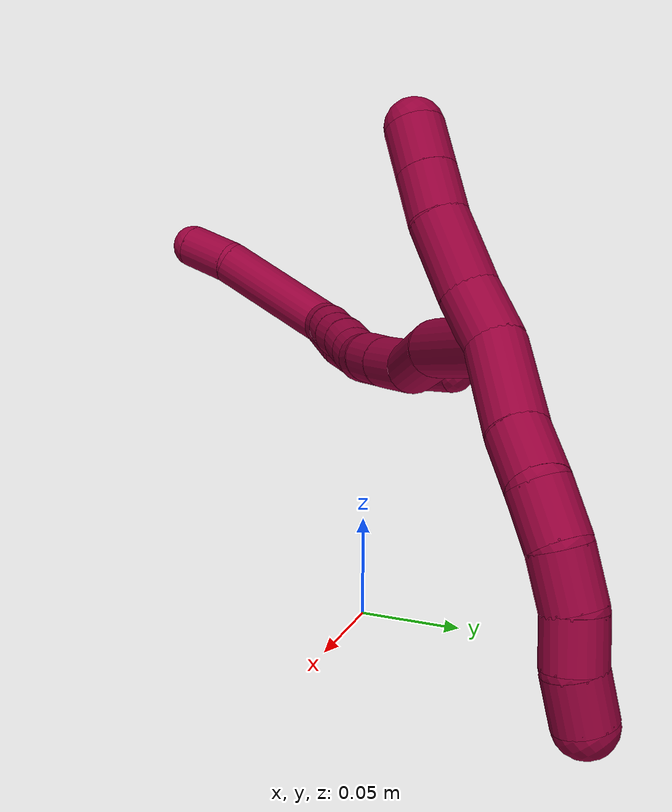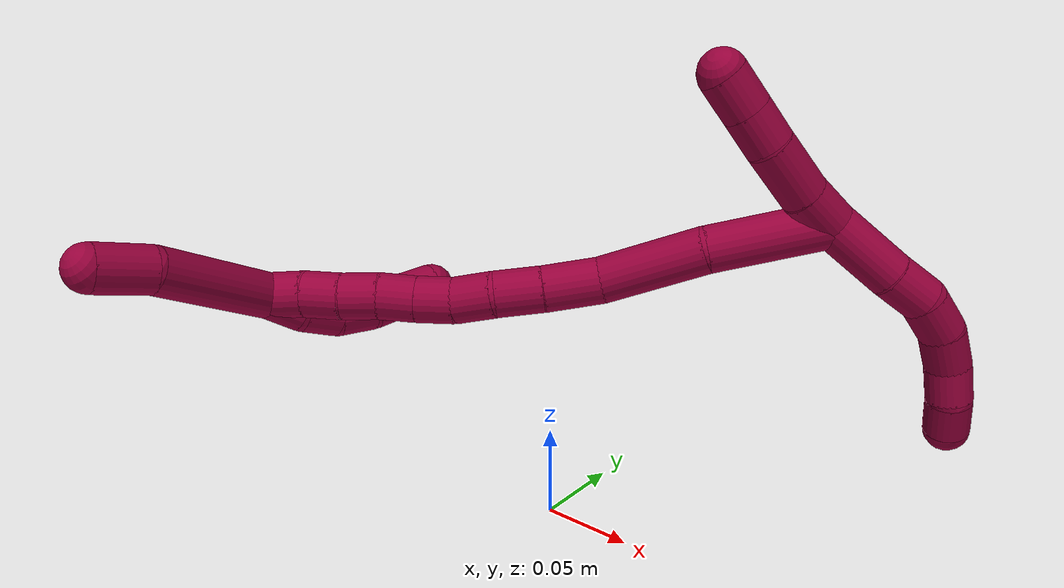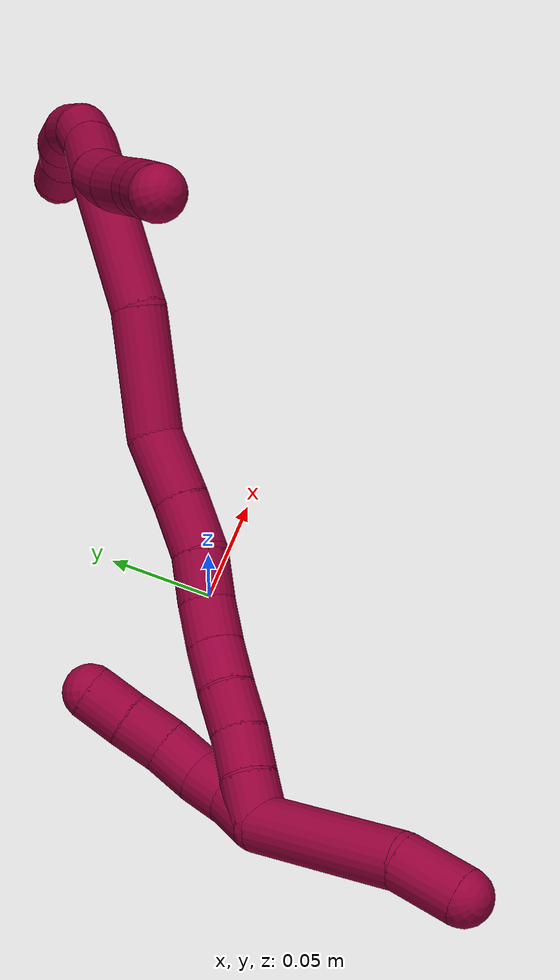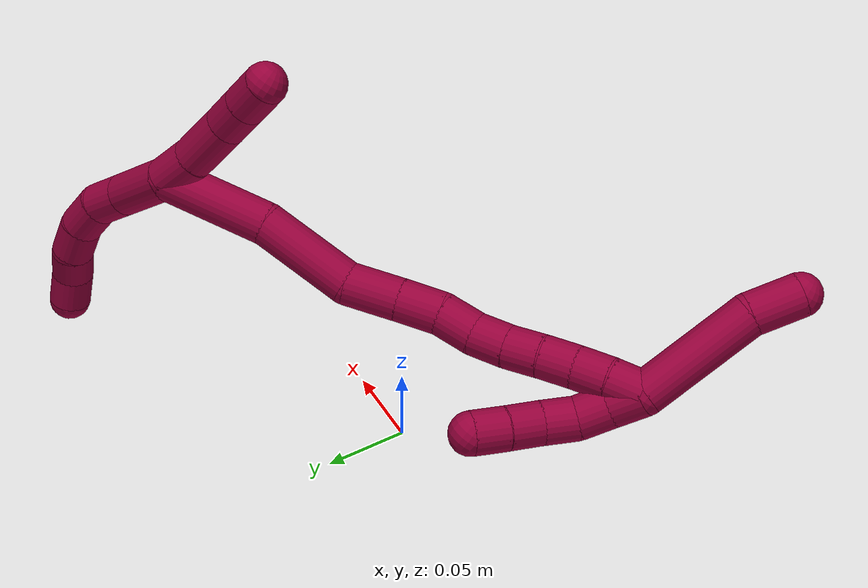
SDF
<sdf version="1.7">
 <world name="default">
  <model name="8">
   <static>0</static>
   <link name="8">
    <collision name="collision-cylinder-e_1_2_8">
     <pose>0.013377 0.000165 -0.015302 -3.13078 0.718347 -3.11279</pose>
     <geometry><cylinder><radius>0.0125</radius><length>0.040651</length></cylinder></geometry>
     <surface>
      <friction><ode><mu>1.16</mu><mu2>1.16</mu2><slip1>0</slip1><slip2>0</slip2></ode></friction>
      <contact><ode><kp>1e+06</kp><kd>1</kd><max_vel>0</max_vel><min_depth>0.001</min_depth></ode></contact>
     </surface>
    </collision>
    <visual name="visual-cylinder-e_1_2_8">
     <pose>0.013377 0.000165 -0.015302 -3.13078 0.718347 -3.11279</pose>
     <geometry><cylinder><radius>0.0125</radius><length>0.040651</length></cylinder></geometry>
     <material><ambient>0.584314 0 0.227451 1</ambient></material>
    </visual>
    <collision name="collision-cylinder-e_2_8_9">
     <pose>0.033823 0.00143 -0.039657 -3.02078 0.659407 -2.79173</pose>
     <geometry><cylinder><radius>0.0125</radius><length>0.023074</length></cylinder></geometry>
     <surface>
      <friction><ode><mu>1.16</mu><mu2>1.16</mu2><slip1>0</slip1><slip2>0</slip2></ode></friction>
      <contact><ode><kp>1e+06</kp><kd>1</kd><max_vel>0</max_vel><min_depth>0.001</min_depth></ode></contact>
     </surface>
    </collision>
    <visual name="visual-cylinder-e_2_8_9">
     <pose>0.033823 0.00143 -0.039657 -3.02078 0.659407 -2.79173</pose>
     <geometry><cylinder><radius>0.0125</radius><length>0.023074</length></cylinder></geometry>
     <material><ambient>0.584314 0 0.227451 1</ambient></material>
    </visual>
    <collision name="collision-cylinder-e_3_9_10">
     <pose>0.045162 0.001228 -0.059244 3.01877 0.382551 2.52666</pose>
     <geometry><cylinder><radius>0.0125</radius><length>0.022886</length></cylinder></geometry>
     <surface>
      <friction><ode><mu>1.16</mu><mu2>1.16</mu2><slip1>0</slip1><slip2>0</slip2></ode></friction>
      <contact><ode><kp>1e+06</kp><kd>1</kd><max_vel>0</max_vel><min_depth>0.001</min_depth></ode></contact>
     </surface>
    </collision>
    <visual name="visual-cylinder-e_3_9_10">
     <pose>0.045162 0.001228 -0.059244 3.01877 0.382551 2.52666</pose>
     <geometry><cylinder><radius>0.0125</radius><length>0.022886</length></cylinder></geometry>
     <material><ambient>0.584314 0 0.227451 1</ambient></material>
    </visual>
    <collision name="collision-cylinder-e_4_10_11">
     <pose>0.051683 -0.003714 -0.080124 2.8031 0.202284 1.07185</pose>
     <geometry><cylinder><radius>0.0125</radius><length>0.022389</length></cylinder></geometry>
     <surface>
      <friction><ode><mu>1.16</mu><mu2>1.16</mu2><slip1>0</slip1><slip2>0</slip2></ode></friction>
      <contact><ode><kp>1e+06</kp><kd>1</kd><max_vel>0</max_vel><min_depth>0.001</min_depth></ode></contact>
     </surface>
    </collision>
    <visual name="visual-cylinder-e_4_10_11">
     <pose>0.051683 -0.003714 -0.080124 2.8031 0.202284 1.07185</pose>
     <geometry><cylinder><radius>0.0125</radius><length>0.022389</length></cylinder></geometry>
     <material><ambient>0.584314 0 0.227451 1</ambient></material>
    </visual>
    <collision name="collision-cylinder-e_5_11_12">
     <pose>0.056111 -0.012887 -0.098717 2.55086 0.215993 0.684602</pose>
     <geometry><cylinder><radius>0.0125</radius><length>0.020337</length></cylinder></geometry>
     <surface>
      <friction><ode><mu>1.16</mu><mu2>1.16</mu2><slip1>0</slip1><slip2>0</slip2></ode></friction>
      <contact><ode><kp>1e+06</kp><kd>1</kd><max_vel>0</max_vel><min_depth>0.001</min_depth></ode></contact>
     </surface>
    </collision>
    <visual name="visual-cylinder-e_5_11_12">
     <pose>0.056111 -0.012887 -0.098717 2.55086 0.215993 0.684602</pose>
     <geometry><cylinder><radius>0.0125</radius><length>0.020337</length></cylinder></geometry>
     <material><ambient>0.584314 0 0.227451 1</ambient></material>
    </visual>
    <collision name="collision-cylinder-e_6_12_6">
     <pose>0.058542 -0.022965 -0.11624 2.68583 0.024345 0.104885</pose>
     <geometry><cylinder><radius>0.0125</radius><length>0.020663</length></cylinder></geometry>
     <surface>
      <friction><ode><mu>1.16</mu><mu2>1.16</mu2><slip1>0</slip1><slip2>0</slip2></ode></friction>
      <contact><ode><kp>1e+06</kp><kd>1</kd><max_vel>0</max_vel><min_depth>0.001</min_depth></ode></contact>
     </surface>
    </collision>
    <visual name="visual-cylinder-e_6_12_6">
     <pose>0.058542 -0.022965 -0.11624 2.68583 0.024345 0.104885</pose>
     <geometry><cylinder><radius>0.0125</radius><length>0.020663</length></cylinder></geometry>
     <material><ambient>0.584314 0 0.227451 1</ambient></material>
    </visual>
    <collision name="collision-cylinder-e_1_2_13">
     <pose>-0.005044 -0.00065 0.011098 0.058521 -0.425974 -0.01266</pose>
     <geometry><cylinder><radius>0.0125</radius><length>0.024416</length></cylinder></geometry>
     <surface>
      <friction><ode><mu>1.16</mu><mu2>1.16</mu2><slip1>0</slip1><slip2>0</slip2></ode></friction>
      <contact><ode><kp>1e+06</kp><kd>1</kd><max_vel>0</max_vel><min_depth>0.001</min_depth></ode></contact>
     </surface>
    </collision>
    <visual name="visual-cylinder-e_1_2_13">
     <pose>-0.005044 -0.00065 0.011098 0.058521 -0.425974 -0.01266</pose>
     <geometry><cylinder><radius>0.0125</radius><length>0.024416</length></cylinder></geometry>
     <material><ambient>0.584314 0 0.227451 1</ambient></material>
    </visual>
    <collision name="collision-cylinder-e_2_13_14">
     <pose>-0.016176 -0.000439 0.037585 -0.055893 -0.376104 0.010639</pose>
     <geometry><cylinder><radius>0.0125</radius><length>0.033144</length></cylinder></geometry>
     <surface>
      <friction><ode><mu>1.16</mu><mu2>1.16</mu2><slip1>0</slip1><slip2>0</slip2></ode></friction>
      <contact><ode><kp>1e+06</kp><kd>1</kd><max_vel>0</max_vel><min_depth>0.001</min_depth></ode></contact>
     </surface>
    </collision>
    <visual name="visual-cylinder-e_2_13_14">
     <pose>-0.016176 -0.000439 0.037585 -0.055893 -0.376104 0.010639</pose>
     <geometry><cylinder><radius>0.0125</radius><length>0.033144</length></cylinder></geometry>
     <material><ambient>0.584314 0 0.227451 1</ambient></material>
    </visual>
    <collision name="collision-cylinder-e_3_14_15">
     <pose>-0.026923 0.001899 0.062297 -0.157191 -0.458669 0.036767</pose>
     <geometry><cylinder><radius>0.0125</radius><length>0.021053</length></cylinder></geometry>
     <surface>
      <friction><ode><mu>1.16</mu><mu2>1.16</mu2><slip1>0</slip1><slip2>0</slip2></ode></friction>
      <contact><ode><kp>1e+06</kp><kd>1</kd><max_vel>0</max_vel><min_depth>0.001</min_depth></ode></contact>
     </surface>
    </collision>
    <visual name="visual-cylinder-e_3_14_15">
     <pose>-0.026923 0.001899 0.062297 -0.157191 -0.458669 0.036767</pose>
     <geometry><cylinder><radius>0.0125</radius><length>0.021053</length></cylinder></geometry>
     <material><ambient>0.584314 0 0.227451 1</ambient></material>
    </visual>
    <collision name="collision-cylinder-e_4_15_5">
     <pose>-0.036343 0.004857 0.08108 -0.155163 -0.46123 0.0365</pose>
     <geometry><cylinder><radius>0.0125</radius><length>0.021388</length></cylinder></geometry>
     <surface>
      <friction><ode><mu>1.16</mu><mu2>1.16</mu2><slip1>0</slip1><slip2>0</slip2></ode></friction>
      <contact><ode><kp>1e+06</kp><kd>1</kd><max_vel>0</max_vel><min_depth>0.001</min_depth></ode></contact>
     </surface>
    </collision>
    <visual name="visual-cylinder-e_4_15_5">
     <pose>-0.036343 0.004857 0.08108 -0.155163 -0.46123 0.0365</pose>
     <geometry><cylinder><radius>0.0125</radius><length>0.021388</length></cylinder></geometry>
     <material><ambient>0.584314 0 0.227451 1</ambient></material>
    </visual>
    <collision name="collision-cylinder-e_1_2_16">
     <pose>-0.021566 -0.02265 0.007186 1.26359 -0.736983 -0.550829</pose>
     <geometry><cylinder><radius>0.0125</radius><length>0.064179</length></cylinder></geometry>
     <surface>
      <friction><ode><mu>1.16</mu><mu2>1.16</mu2><slip1>0</slip1><slip2>0</slip2></ode></friction>
      <contact><ode><kp>1e+06</kp><kd>1</kd><max_vel>0</max_vel><min_depth>0.001</min_depth></ode></contact>
     </surface>
    </collision>
    <visual name="visual-cylinder-e_1_2_16">
     <pose>-0.021566 -0.02265 0.007186 1.26359 -0.736983 -0.550829</pose>
     <geometry><cylinder><radius>0.0125</radius><length>0.064179</length></cylinder></geometry>
     <material><ambient>0.584314 0 0.227451 1</ambient></material>
    </visual>
    <collision name="collision-cylinder-e_2_16_17">
     <pose>-0.063898 -0.064671 0.015131 1.53161 -0.819761 -0.791492</pose>
     <geometry><cylinder><radius>0.0125</radius><length>0.056818</length></cylinder></geometry>
     <surface>
      <friction><ode><mu>1.16</mu><mu2>1.16</mu2><slip1>0</slip1><slip2>0</slip2></ode></friction>
      <contact><ode><kp>1e+06</kp><kd>1</kd><max_vel>0</max_vel><min_depth>0.001</min_depth></ode></contact>
     </surface>
    </collision>
    <visual name="visual-cylinder-e_2_16_17">
     <pose>-0.063898 -0.064671 0.015131 1.53161 -0.819761 -0.791492</pose>
     <geometry><cylinder><radius>0.0125</radius><length>0.056818</length></cylinder></geometry>
     <material><ambient>0.584314 0 0.227451 1</ambient></material>
    </visual>
    <collision name="collision-cylinder-e_3_17_18">
     <pose>-0.09439 -0.095011 0.021106 1.12691 -0.67517 -0.43647</pose>
     <geometry><cylinder><radius>0.0125</radius><length>0.031119</length></cylinder></geometry>
     <surface>
      <friction><ode><mu>1.16</mu><mu2>1.16</mu2><slip1>0</slip1><slip2>0</slip2></ode></friction>
      <contact><ode><kp>1e+06</kp><kd>1</kd><max_vel>0</max_vel><min_depth>0.001</min_depth></ode></contact>
     </surface>
    </collision>
    <visual name="visual-cylinder-e_3_17_18">
     <pose>-0.09439 -0.095011 0.021106 1.12691 -0.67517 -0.43647</pose>
     <geometry><cylinder><radius>0.0125</radius><length>0.031119</length></cylinder></geometry>
     <material><ambient>0.584314 0 0.227451 1</ambient></material>
    </visual>
    <collision name="collision-cylinder-e_4_18_19">
     <pose>-0.11249 -0.114387 0.030557 1.10418 -0.727054 -0.460378</pose>
     <geometry><cylinder><radius>0.0125</radius><length>0.0252</length></cylinder></geometry>
     <surface>
      <friction><ode><mu>1.16</mu><mu2>1.16</mu2><slip1>0</slip1><slip2>0</slip2></ode></friction>
      <contact><ode><kp>1e+06</kp><kd>1</kd><max_vel>0</max_vel><min_depth>0.001</min_depth></ode></contact>
     </surface>
    </collision>
    <visual name="visual-cylinder-e_4_18_19">
     <pose>-0.11249 -0.114387 0.030557 1.10418 -0.727054 -0.460378</pose>
     <geometry><cylinder><radius>0.0125</radius><length>0.0252</length></cylinder></geometry>
     <material><ambient>0.584314 0 0.227451 1</ambient></material>
    </visual>
    <collision name="collision-cylinder-e_5_19_20">
     <pose>-0.129356 -0.129663 0.036401 1.34074 -0.877535 -0.712396</pose>
     <geometry><cylinder><radius>0.0125</radius><length>0.022077</length></cylinder></geometry>
     <surface>
      <friction><ode><mu>1.16</mu><mu2>1.16</mu2><slip1>0</slip1><slip2>0</slip2></ode></friction>
      <contact><ode><kp>1e+06</kp><kd>1</kd><max_vel>0</max_vel><min_depth>0.001</min_depth></ode></contact>
     </surface>
    </collision>
    <visual name="visual-cylinder-e_5_19_20">
     <pose>-0.129356 -0.129663 0.036401 1.34074 -0.877535 -0.712396</pose>
     <geometry><cylinder><radius>0.0125</radius><length>0.022077</length></cylinder></geometry>
     <material><ambient>0.584314 0 0.227451 1</ambient></material>
    </visual>
    <collision name="collision-cylinder-e_6_20_21">
     <pose>-0.1458 -0.141978 0.041454 1.0069 -0.889821 -0.513629</pose>
     <geometry><cylinder><radius>0.0125</radius><length>0.020474</length></cylinder></geometry>
     <surface>
      <friction><ode><mu>1.16</mu><mu2>1.16</mu2><slip1>0</slip1><slip2>0</slip2></ode></friction>
      <contact><ode><kp>1e+06</kp><kd>1</kd><max_vel>0</max_vel><min_depth>0.001</min_depth></ode></contact>
     </surface>
    </collision>
    <visual name="visual-cylinder-e_6_20_21">
     <pose>-0.1458 -0.141978 0.041454 1.0069 -0.889821 -0.513629</pose>
     <geometry><cylinder><radius>0.0125</radius><length>0.020474</length></cylinder></geometry>
     <material><ambient>0.584314 0 0.227451 1</ambient></material>
    </visual>
    <collision name="collision-cylinder-e_7_21_22">
     <pose>-0.161287 -0.152498 0.049125 0.876139 -0.851177 -0.418452</pose>
     <geometry><cylinder><radius>0.0125</radius><length>0.020034</length></cylinder></geometry>
     <surface>
      <friction><ode><mu>1.16</mu><mu2>1.16</mu2><slip1>0</slip1><slip2>0</slip2></ode></friction>
      <contact><ode><kp>1e+06</kp><kd>1</kd><max_vel>0</max_vel><min_depth>0.001</min_depth></ode></contact>
     </surface>
    </collision>
    <visual name="visual-cylinder-e_7_21_22">
     <pose>-0.161287 -0.152498 0.049125 0.876139 -0.851177 -0.418452</pose>
     <geometry><cylinder><radius>0.0125</radius><length>0.020034</length></cylinder></geometry>
     <material><ambient>0.584314 0 0.227451 1</ambient></material>
    </visual>
    <collision name="collision-cylinder-e_8_22_23">
     <pose>-0.176024 -0.163472 0.057116 1.00291 -0.799675 -0.455301</pose>
     <geometry><cylinder><radius>0.0125</radius><length>0.02009</length></cylinder></geometry>
     <surface>
      <friction><ode><mu>1.16</mu><mu2>1.16</mu2><slip1>0</slip1><slip2>0</slip2></ode></friction>
      <contact><ode><kp>1e+06</kp><kd>1</kd><max_vel>0</max_vel><min_depth>0.001</min_depth></ode></contact>
     </surface>
    </collision>
    <visual name="visual-cylinder-e_8_22_23">
     <pose>-0.176024 -0.163472 0.057116 1.00291 -0.799675 -0.455301</pose>
     <geometry><cylinder><radius>0.0125</radius><length>0.02009</length></cylinder></geometry>
     <material><ambient>0.584314 0 0.227451 1</ambient></material>
    </visual>
    <collision name="collision-cylinder-e_9_23_24">
     <pose>-0.190992 -0.17451 0.064542 0.951543 -0.888588 -0.481057</pose>
     <geometry><cylinder><radius>0.0125</radius><length>0.020005</length></cylinder></geometry>
     <surface>
      <friction><ode><mu>1.16</mu><mu2>1.16</mu2><slip1>0</slip1><slip2>0</slip2></ode></friction>
      <contact><ode><kp>1e+06</kp><kd>1</kd><max_vel>0</max_vel><min_depth>0.001</min_depth></ode></contact>
     </surface>
    </collision>
    <visual name="visual-cylinder-e_9_23_24">
     <pose>-0.190992 -0.17451 0.064542 0.951543 -0.888588 -0.481057</pose>
     <geometry><cylinder><radius>0.0125</radius><length>0.020005</length></cylinder></geometry>
     <material><ambient>0.584314 0 0.227451 1</ambient></material>
    </visual>
    <collision name="collision-cylinder-e_10_24_1">
     <pose>-0.206256 -0.185564 0.071159 1.10761 -0.847931 -0.544322</pose>
     <geometry><cylinder><radius>0.0125</radius><length>0.020003</length></cylinder></geometry>
     <surface>
      <friction><ode><mu>1.16</mu><mu2>1.16</mu2><slip1>0</slip1><slip2>0</slip2></ode></friction>
      <contact><ode><kp>1e+06</kp><kd>1</kd><max_vel>0</max_vel><min_depth>0.001</min_depth></ode></contact>
     </surface>
    </collision>
    <visual name="visual-cylinder-e_10_24_1">
     <pose>-0.206256 -0.185564 0.071159 1.10761 -0.847931 -0.544322</pose>
     <geometry><cylinder><radius>0.0125</radius><length>0.020003</length></cylinder></geometry>
     <material><ambient>0.584314 0 0.227451 1</ambient></material>
    </visual>
    <collision name="collision-cylinder-e_1_1_25">
     <pose>-0.213129 -0.205609 0.10624 0.414257 0.017878 0.003757</pose>
     <geometry><cylinder><radius>0.0125</radius><length>0.070197</length></cylinder></geometry>
     <surface>
      <friction><ode><mu>1.16</mu><mu2>1.16</mu2><slip1>0</slip1><slip2>0</slip2></ode></friction>
      <contact><ode><kp>1e+06</kp><kd>1</kd><max_vel>0</max_vel><min_depth>0.001</min_depth></ode></contact>
     </surface>
    </collision>
    <visual name="visual-cylinder-e_1_1_25">
     <pose>-0.213129 -0.205609 0.10624 0.414257 0.017878 0.003757</pose>
     <geometry><cylinder><radius>0.0125</radius><length>0.070197</length></cylinder></geometry>
     <material><ambient>0.584314 0 0.227451 1</ambient></material>
    </visual>
    <collision name="collision-cylinder-e_2_25_4">
     <pose>-0.214607 -0.228646 0.15012 0.648659 -0.141797 -0.047743</pose>
     <geometry><cylinder><radius>0.0125</radius><length>0.029803</length></cylinder></geometry>
     <surface>
      <friction><ode><mu>1.16</mu><mu2>1.16</mu2><slip1>0</slip1><slip2>0</slip2></ode></friction>
      <contact><ode><kp>1e+06</kp><kd>1</kd><max_vel>0</max_vel><min_depth>0.001</min_depth></ode></contact>
     </surface>
    </collision>
    <visual name="visual-cylinder-e_2_25_4">
     <pose>-0.214607 -0.228646 0.15012 0.648659 -0.141797 -0.047743</pose>
     <geometry><cylinder><radius>0.0125</radius><length>0.029803</length></cylinder></geometry>
     <material><ambient>0.584314 0 0.227451 1</ambient></material>
    </visual>
    <collision name="collision-cylinder-e_1_1_26">
     <pose>-0.209756 -0.18839 0.065488 -2.79734 0.411477 -1.75247</pose>
     <geometry><cylinder><radius>0.0125</radius><length>0.02</length></cylinder></geometry>
     <surface>
      <friction><ode><mu>1.16</mu><mu2>1.16</mu2><slip1>0</slip1><slip2>0</slip2></ode></friction>
      <contact><ode><kp>1e+06</kp><kd>1</kd><max_vel>0</max_vel><min_depth>0.001</min_depth></ode></contact>
     </surface>
    </collision>
    <visual name="visual-cylinder-e_1_1_26">
     <pose>-0.209756 -0.18839 0.065488 -2.79734 0.411477 -1.75247</pose>
     <geometry><cylinder><radius>0.0125</radius><length>0.02</length></cylinder></geometry>
     <material><ambient>0.584314 0 0.227451 1</ambient></material>
    </visual>
    <collision name="collision-cylinder-e_2_26_27">
     <pose>-0.203314 -0.180246 0.048583 -2.59368 0.246735 -0.831081</pose>
     <geometry><cylinder><radius>0.0125</radius><length>0.02</length></cylinder></geometry>
     <surface>
      <friction><ode><mu>1.16</mu><mu2>1.16</mu2><slip1>0</slip1><slip2>0</slip2></ode></friction>
      <contact><ode><kp>1e+06</kp><kd>1</kd><max_vel>0</max_vel><min_depth>0.001</min_depth></ode></contact>
     </surface>
    </collision>
    <visual name="visual-cylinder-e_2_26_27">
     <pose>-0.203314 -0.180246 0.048583 -2.59368 0.246735 -0.831081</pose>
     <geometry><cylinder><radius>0.0125</radius><length>0.02</length></cylinder></geometry>
     <material><ambient>0.584314 0 0.227451 1</ambient></material>
    </visual>
    <collision name="collision-cylinder-e_3_27_28">
     <pose>-0.198399 -0.167655 0.034219 -2.24994 0.249909 -0.514026</pose>
     <geometry><cylinder><radius>0.0125</radius><length>0.02</length></cylinder></geometry>
     <surface>
      <friction><ode><mu>1.16</mu><mu2>1.16</mu2><slip1>0</slip1><slip2>0</slip2></ode></friction>
      <contact><ode><kp>1e+06</kp><kd>1</kd><max_vel>0</max_vel><min_depth>0.001</min_depth></ode></contact>
     </surface>
    </collision>
    <visual name="visual-cylinder-e_3_27_28">
     <pose>-0.198399 -0.167655 0.034219 -2.24994 0.249909 -0.514026</pose>
     <geometry><cylinder><radius>0.0125</radius><length>0.02</length></cylinder></geometry>
     <material><ambient>0.584314 0 0.227451 1</ambient></material>
    </visual>
    <collision name="collision-cylinder-e_4_28_29">
     <pose>-0.194948 -0.151706 0.022811 -2.13496 0.097957 -0.177579</pose>
     <geometry><cylinder><radius>0.0125</radius><length>0.02</length></cylinder></geometry>
     <surface>
      <friction><ode><mu>1.16</mu><mu2>1.16</mu2><slip1>0</slip1><slip2>0</slip2></ode></friction>
      <contact><ode><kp>1e+06</kp><kd>1</kd><max_vel>0</max_vel><min_depth>0.001</min_depth></ode></contact>
     </surface>
    </collision>
    <visual name="visual-cylinder-e_4_28_29">
     <pose>-0.194948 -0.151706 0.022811 -2.13496 0.097957 -0.177579</pose>
     <geometry><cylinder><radius>0.0125</radius><length>0.02</length></cylinder></geometry>
     <material><ambient>0.584314 0 0.227451 1</ambient></material>
    </visual>
    <collision name="collision-cylinder-e_5_29_3">
     <pose>-0.192548 -0.135032 0.012041 -2.15369 0.142638 -0.263803</pose>
     <geometry><cylinder><radius>0.0125</radius><length>0.02</length></cylinder></geometry>
     <surface>
      <friction><ode><mu>1.16</mu><mu2>1.16</mu2><slip1>0</slip1><slip2>0</slip2></ode></friction>
      <contact><ode><kp>1e+06</kp><kd>1</kd><max_vel>0</max_vel><min_depth>0.001</min_depth></ode></contact>
     </surface>
    </collision>
    <visual name="visual-cylinder-e_5_29_3">
     <pose>-0.192548 -0.135032 0.012041 -2.15369 0.142638 -0.263803</pose>
     <geometry><cylinder><radius>0.0125</radius><length>0.02</length></cylinder></geometry>
     <material><ambient>0.584314 0 0.227451 1</ambient></material>
    </visual>
    <collision name="collision-sphere-3">
     <pose>-0.191127 -0.126768 0.006593 0 -0 0</pose>
     <geometry><sphere><radius>0.0125</radius></sphere></geometry>
     <surface>
      <friction><ode><mu>1.16</mu><mu2>1.16</mu2><slip1>0</slip1><slip2>0</slip2></ode></friction>
      <contact><ode><kp>1e+06</kp><kd>1</kd><max_vel>0</max_vel><min_depth>0.001</min_depth></ode></contact>
     </surface>
    </collision>
    <visual name="visual-sphere-3">
     <pose>-0.191127 -0.126768 0.006593 0 -0 0</pose>
     <geometry><sphere><radius>0.0125</radius></sphere></geometry>
     <material><ambient>0.584314 0 0.227451 1</ambient></material>
    </visual>
    <collision name="collision-sphere-29">
     <pose>-0.19397 -0.143296 0.01749 0 -0 0</pose>
     <geometry><sphere><radius>0.0125</radius></sphere></geometry>
     <surface>
      <friction><ode><mu>1.16</mu><mu2>1.16</mu2><slip1>0</slip1><slip2>0</slip2></ode></friction>
      <contact><ode><kp>1e+06</kp><kd>1</kd><max_vel>0</max_vel><min_depth>0.001</min_depth></ode></contact>
     </surface>
    </collision>
    <visual name="visual-sphere-29">
     <pose>-0.19397 -0.143296 0.01749 0 -0 0</pose>
     <geometry><sphere><radius>0.0125</radius></sphere></geometry>
     <material><ambient>0.584314 0 0.227451 1</ambient></material>
    </visual>
    <collision name="collision-sphere-28">
     <pose>-0.195926 -0.160116 0.028133 0 -0 0</pose>
     <geometry><sphere><radius>0.0125</radius></sphere></geometry>
     <surface>
      <friction><ode><mu>1.16</mu><mu2>1.16</mu2><slip1>0</slip1><slip2>0</slip2></ode></friction>
      <contact><ode><kp>1e+06</kp><kd>1</kd><max_vel>0</max_vel><min_depth>0.001</min_depth></ode></contact>
     </surface>
    </collision>
    <visual name="visual-sphere-28">
     <pose>-0.195926 -0.160116 0.028133 0 -0 0</pose>
     <geometry><sphere><radius>0.0125</radius></sphere></geometry>
     <material><ambient>0.584314 0 0.227451 1</ambient></material>
    </visual>
    <collision name="collision-sphere-27">
     <pose>-0.200872 -0.175194 0.040305 0 -0 0</pose>
     <geometry><sphere><radius>0.0125</radius></sphere></geometry>
     <surface>
      <friction><ode><mu>1.16</mu><mu2>1.16</mu2><slip1>0</slip1><slip2>0</slip2></ode></friction>
      <contact><ode><kp>1e+06</kp><kd>1</kd><max_vel>0</max_vel><min_depth>0.001</min_depth></ode></contact>
     </surface>
    </collision>
    <visual name="visual-sphere-27">
     <pose>-0.200872 -0.175194 0.040305 0 -0 0</pose>
     <geometry><sphere><radius>0.0125</radius></sphere></geometry>
     <material><ambient>0.584314 0 0.227451 1</ambient></material>
    </visual>
    <collision name="collision-sphere-26">
     <pose>-0.205757 -0.185297 0.05686 0 -0 0</pose>
     <geometry><sphere><radius>0.0125</radius></sphere></geometry>
     <surface>
      <friction><ode><mu>1.16</mu><mu2>1.16</mu2><slip1>0</slip1><slip2>0</slip2></ode></friction>
      <contact><ode><kp>1e+06</kp><kd>1</kd><max_vel>0</max_vel><min_depth>0.001</min_depth></ode></contact>
     </surface>
    </collision>
    <visual name="visual-sphere-26">
     <pose>-0.205757 -0.185297 0.05686 0 -0 0</pose>
     <geometry><sphere><radius>0.0125</radius></sphere></geometry>
     <material><ambient>0.584314 0 0.227451 1</ambient></material>
    </visual>
    <collision name="collision-sphere-4">
     <pose>-0.216713 -0.237558 0.161876 0 -0 0</pose>
     <geometry><sphere><radius>0.0125</radius></sphere></geometry>
     <surface>
      <friction><ode><mu>1.16</mu><mu2>1.16</mu2><slip1>0</slip1><slip2>0</slip2></ode></friction>
      <contact><ode><kp>1e+06</kp><kd>1</kd><max_vel>0</max_vel><min_depth>0.001</min_depth></ode></contact>
     </surface>
    </collision>
    <visual name="visual-sphere-4">
     <pose>-0.216713 -0.237558 0.161876 0 -0 0</pose>
     <geometry><sphere><radius>0.0125</radius></sphere></geometry>
     <material><ambient>0.584314 0 0.227451 1</ambient></material>
    </visual>
    <collision name="collision-sphere-25">
     <pose>-0.212501 -0.219734 0.138365 0 -0 0</pose>
     <geometry><sphere><radius>0.0125</radius></sphere></geometry>
     <surface>
      <friction><ode><mu>1.16</mu><mu2>1.16</mu2><slip1>0</slip1><slip2>0</slip2></ode></friction>
      <contact><ode><kp>1e+06</kp><kd>1</kd><max_vel>0</max_vel><min_depth>0.001</min_depth></ode></contact>
     </surface>
    </collision>
    <visual name="visual-sphere-25">
     <pose>-0.212501 -0.219734 0.138365 0 -0 0</pose>
     <geometry><sphere><radius>0.0125</radius></sphere></geometry>
     <material><ambient>0.584314 0 0.227451 1</ambient></material>
    </visual>
    <collision name="collision-sphere-1">
     <pose>-0.213756 -0.191484 0.074115 0 -0 0</pose>
     <geometry><sphere><radius>0.0125</radius></sphere></geometry>
     <surface>
      <friction><ode><mu>1.16</mu><mu2>1.16</mu2><slip1>0</slip1><slip2>0</slip2></ode></friction>
      <contact><ode><kp>1e+06</kp><kd>1</kd><max_vel>0</max_vel><min_depth>0.001</min_depth></ode></contact>
     </surface>
    </collision>
    <visual name="visual-sphere-1">
     <pose>-0.213756 -0.191484 0.074115 0 -0 0</pose>
     <geometry><sphere><radius>0.0125</radius></sphere></geometry>
     <material><ambient>0.584314 0 0.227451 1</ambient></material>
    </visual>
    <collision name="collision-sphere-24">
     <pose>-0.198756 -0.179645 0.068203 0 -0 0</pose>
     <geometry><sphere><radius>0.0125</radius></sphere></geometry>
     <surface>
      <friction><ode><mu>1.16</mu><mu2>1.16</mu2><slip1>0</slip1><slip2>0</slip2></ode></friction>
      <contact><ode><kp>1e+06</kp><kd>1</kd><max_vel>0</max_vel><min_depth>0.001</min_depth></ode></contact>
     </surface>
    </collision>
    <visual name="visual-sphere-24">
     <pose>-0.198756 -0.179645 0.068203 0 -0 0</pose>
     <geometry><sphere><radius>0.0125</radius></sphere></geometry>
     <material><ambient>0.584314 0 0.227451 1</ambient></material>
    </visual>
    <collision name="collision-sphere-23">
     <pose>-0.183228 -0.169374 0.060882 0 -0 0</pose>
     <geometry><sphere><radius>0.0125</radius></sphere></geometry>
     <surface>
      <friction><ode><mu>1.16</mu><mu2>1.16</mu2><slip1>0</slip1><slip2>0</slip2></ode></friction>
      <contact><ode><kp>1e+06</kp><kd>1</kd><max_vel>0</max_vel><min_depth>0.001</min_depth></ode></contact>
     </surface>
    </collision>
    <visual name="visual-sphere-23">
     <pose>-0.183228 -0.169374 0.060882 0 -0 0</pose>
     <geometry><sphere><radius>0.0125</radius></sphere></geometry>
     <material><ambient>0.584314 0 0.227451 1</ambient></material>
    </visual>
    <collision name="collision-sphere-22">
     <pose>-0.168821 -0.15757 0.053351 0 -0 0</pose>
     <geometry><sphere><radius>0.0125</radius></sphere></geometry>
     <surface>
      <friction><ode><mu>1.16</mu><mu2>1.16</mu2><slip1>0</slip1><slip2>0</slip2></ode></friction>
      <contact><ode><kp>1e+06</kp><kd>1</kd><max_vel>0</max_vel><min_depth>0.001</min_depth></ode></contact>
     </surface>
    </collision>
    <visual name="visual-sphere-22">
     <pose>-0.168821 -0.15757 0.053351 0 -0 0</pose>
     <geometry><sphere><radius>0.0125</radius></sphere></geometry>
     <material><ambient>0.584314 0 0.227451 1</ambient></material>
    </visual>
    <collision name="collision-sphere-21">
     <pose>-0.153754 -0.147426 0.044899 0 -0 0</pose>
     <geometry><sphere><radius>0.0125</radius></sphere></geometry>
     <surface>
      <friction><ode><mu>1.16</mu><mu2>1.16</mu2><slip1>0</slip1><slip2>0</slip2></ode></friction>
      <contact><ode><kp>1e+06</kp><kd>1</kd><max_vel>0</max_vel><min_depth>0.001</min_depth></ode></contact>
     </surface>
    </collision>
    <visual name="visual-sphere-21">
     <pose>-0.153754 -0.147426 0.044899 0 -0 0</pose>
     <geometry><sphere><radius>0.0125</radius></sphere></geometry>
     <material><ambient>0.584314 0 0.227451 1</ambient></material>
    </visual>
    <collision name="collision-sphere-12">
     <pose>0.058291 -0.018419 -0.106966 0 -0 0</pose>
     <geometry><sphere><radius>0.0125</radius></sphere></geometry>
     <surface>
      <friction><ode><mu>1.16</mu><mu2>1.16</mu2><slip1>0</slip1><slip2>0</slip2></ode></friction>
      <contact><ode><kp>1e+06</kp><kd>1</kd><max_vel>0</max_vel><min_depth>0.001</min_depth></ode></contact>
     </surface>
    </collision>
    <visual name="visual-sphere-12">
     <pose>0.058291 -0.018419 -0.106966 0 -0 0</pose>
     <geometry><sphere><radius>0.0125</radius></sphere></geometry>
     <material><ambient>0.584314 0 0.227451 1</ambient></material>
    </visual>
    <collision name="collision-sphere-11">
     <pose>0.053932 -0.007355 -0.090468 0 -0 0</pose>
     <geometry><sphere><radius>0.0125</radius></sphere></geometry>
     <surface>
      <friction><ode><mu>1.16</mu><mu2>1.16</mu2><slip1>0</slip1><slip2>0</slip2></ode></friction>
      <contact><ode><kp>1e+06</kp><kd>1</kd><max_vel>0</max_vel><min_depth>0.001</min_depth></ode></contact>
     </surface>
    </collision>
    <visual name="visual-sphere-11">
     <pose>0.053932 -0.007355 -0.090468 0 -0 0</pose>
     <geometry><sphere><radius>0.0125</radius></sphere></geometry>
     <material><ambient>0.584314 0 0.227451 1</ambient></material>
    </visual>
    <collision name="collision-sphere-10">
     <pose>0.049434 -7.2e-05 -0.06978 0 -0 0</pose>
     <geometry><sphere><radius>0.0125</radius></sphere></geometry>
     <surface>
      <friction><ode><mu>1.16</mu><mu2>1.16</mu2><slip1>0</slip1><slip2>0</slip2></ode></friction>
      <contact><ode><kp>1e+06</kp><kd>1</kd><max_vel>0</max_vel><min_depth>0.001</min_depth></ode></contact>
     </surface>
    </collision>
    <visual name="visual-sphere-10">
     <pose>0.049434 -7.2e-05 -0.06978 0 -0 0</pose>
     <geometry><sphere><radius>0.0125</radius></sphere></geometry>
     <material><ambient>0.584314 0 0.227451 1</ambient></material>
    </visual>
    <collision name="collision-sphere-9">
     <pose>0.040891 0.002529 -0.048709 0 -0 0</pose>
     <geometry><sphere><radius>0.0125</radius></sphere></geometry>
     <surface>
      <friction><ode><mu>1.16</mu><mu2>1.16</mu2><slip1>0</slip1><slip2>0</slip2></ode></friction>
      <contact><ode><kp>1e+06</kp><kd>1</kd><max_vel>0</max_vel><min_depth>0.001</min_depth></ode></contact>
     </surface>
    </collision>
    <visual name="visual-sphere-9">
     <pose>0.040891 0.002529 -0.048709 0 -0 0</pose>
     <geometry><sphere><radius>0.0125</radius></sphere></geometry>
     <material><ambient>0.584314 0 0.227451 1</ambient></material>
    </visual>
    <collision name="collision-sphere-2">
     <geometry><sphere><radius>0.0125</radius></sphere></geometry>
     <surface>
      <friction><ode><mu>1.16</mu><mu2>1.16</mu2><slip1>0</slip1><slip2>0</slip2></ode></friction>
      <contact><ode><kp>1e+06</kp><kd>1</kd><max_vel>0</max_vel><min_depth>0.001</min_depth></ode></contact>
     </surface>
    </collision>
    <visual name="visual-sphere-2">
     <geometry><sphere><radius>0.0125</radius></sphere></geometry>
     <material><ambient>0.584314 0 0.227451 1</ambient></material>
    </visual>
    <collision name="collision-sphere-19">
     <pose>-0.120865 -0.122795 0.034792 0 -0 0</pose>
     <geometry><sphere><radius>0.0125</radius></sphere></geometry>
     <surface>
      <friction><ode><mu>1.16</mu><mu2>1.16</mu2><slip1>0</slip1><slip2>0</slip2></ode></friction>
      <contact><ode><kp>1e+06</kp><kd>1</kd><max_vel>0</max_vel><min_depth>0.001</min_depth></ode></contact>
     </surface>
    </collision>
    <visual name="visual-sphere-19">
     <pose>-0.120865 -0.122795 0.034792 0 -0 0</pose>
     <geometry><sphere><radius>0.0125</radius></sphere></geometry>
     <material><ambient>0.584314 0 0.227451 1</ambient></material>
    </visual>
    <collision name="collision-sphere-8">
     <pose>0.026754 0.000331 -0.030604 0 -0 0</pose>
     <geometry><sphere><radius>0.0125</radius></sphere></geometry>
     <surface>
      <friction><ode><mu>1.16</mu><mu2>1.16</mu2><slip1>0</slip1><slip2>0</slip2></ode></friction>
      <contact><ode><kp>1e+06</kp><kd>1</kd><max_vel>0</max_vel><min_depth>0.001</min_depth></ode></contact>
     </surface>
    </collision>
    <visual name="visual-sphere-8">
     <pose>0.026754 0.000331 -0.030604 0 -0 0</pose>
     <geometry><sphere><radius>0.0125</radius></sphere></geometry>
     <material><ambient>0.584314 0 0.227451 1</ambient></material>
    </visual>
    <collision name="collision-sphere-6">
     <pose>0.058794 -0.027511 -0.125514 0 -0 0</pose>
     <geometry><sphere><radius>0.0125</radius></sphere></geometry>
     <surface>
      <friction><ode><mu>1.16</mu><mu2>1.16</mu2><slip1>0</slip1><slip2>0</slip2></ode></friction>
      <contact><ode><kp>1e+06</kp><kd>1</kd><max_vel>0</max_vel><min_depth>0.001</min_depth></ode></contact>
     </surface>
    </collision>
    <visual name="visual-sphere-6">
     <pose>0.058794 -0.027511 -0.125514 0 -0 0</pose>
     <geometry><sphere><radius>0.0125</radius></sphere></geometry>
     <material><ambient>0.584314 0 0.227451 1</ambient></material>
    </visual>
    <collision name="collision-sphere-13">
     <pose>-0.010089 -0.0013 0.022196 0 -0 0</pose>
     <geometry><sphere><radius>0.0125</radius></sphere></geometry>
     <surface>
      <friction><ode><mu>1.16</mu><mu2>1.16</mu2><slip1>0</slip1><slip2>0</slip2></ode></friction>
      <contact><ode><kp>1e+06</kp><kd>1</kd><max_vel>0</max_vel><min_depth>0.001</min_depth></ode></contact>
     </surface>
    </collision>
    <visual name="visual-sphere-13">
     <pose>-0.010089 -0.0013 0.022196 0 -0 0</pose>
     <geometry><sphere><radius>0.0125</radius></sphere></geometry>
     <material><ambient>0.584314 0 0.227451 1</ambient></material>
    </visual>
    <collision name="collision-sphere-14">
     <pose>-0.022262 0.000422 0.052975 0 -0 0</pose>
     <geometry><sphere><radius>0.0125</radius></sphere></geometry>
     <surface>
      <friction><ode><mu>1.16</mu><mu2>1.16</mu2><slip1>0</slip1><slip2>0</slip2></ode></friction>
      <contact><ode><kp>1e+06</kp><kd>1</kd><max_vel>0</max_vel><min_depth>0.001</min_depth></ode></contact>
     </surface>
    </collision>
    <visual name="visual-sphere-14">
     <pose>-0.022262 0.000422 0.052975 0 -0 0</pose>
     <geometry><sphere><radius>0.0125</radius></sphere></geometry>
     <material><ambient>0.584314 0 0.227451 1</ambient></material>
    </visual>
    <collision name="collision-sphere-15">
     <pose>-0.031584 0.003377 0.071619 0 -0 0</pose>
     <geometry><sphere><radius>0.0125</radius></sphere></geometry>
     <surface>
      <friction><ode><mu>1.16</mu><mu2>1.16</mu2><slip1>0</slip1><slip2>0</slip2></ode></friction>
      <contact><ode><kp>1e+06</kp><kd>1</kd><max_vel>0</max_vel><min_depth>0.001</min_depth></ode></contact>
     </surface>
    </collision>
    <visual name="visual-sphere-15">
     <pose>-0.031584 0.003377 0.071619 0 -0 0</pose>
     <geometry><sphere><radius>0.0125</radius></sphere></geometry>
     <material><ambient>0.584314 0 0.227451 1</ambient></material>
    </visual>
    <collision name="collision-sphere-5">
     <pose>-0.041102 0.006337 0.090542 0 -0 0</pose>
     <geometry><sphere><radius>0.0125</radius></sphere></geometry>
     <surface>
      <friction><ode><mu>1.16</mu><mu2>1.16</mu2><slip1>0</slip1><slip2>0</slip2></ode></friction>
      <contact><ode><kp>1e+06</kp><kd>1</kd><max_vel>0</max_vel><min_depth>0.001</min_depth></ode></contact>
     </surface>
    </collision>
    <visual name="visual-sphere-5">
     <pose>-0.041102 0.006337 0.090542 0 -0 0</pose>
     <geometry><sphere><radius>0.0125</radius></sphere></geometry>
     <material><ambient>0.584314 0 0.227451 1</ambient></material>
    </visual>
    <collision name="collision-sphere-16">
     <pose>-0.043132 -0.045299 0.014371 0 -0 0</pose>
     <geometry><sphere><radius>0.0125</radius></sphere></geometry>
     <surface>
      <friction><ode><mu>1.16</mu><mu2>1.16</mu2><slip1>0</slip1><slip2>0</slip2></ode></friction>
      <contact><ode><kp>1e+06</kp><kd>1</kd><max_vel>0</max_vel><min_depth>0.001</min_depth></ode></contact>
     </surface>
    </collision>
    <visual name="visual-sphere-16">
     <pose>-0.043132 -0.045299 0.014371 0 -0 0</pose>
     <geometry><sphere><radius>0.0125</radius></sphere></geometry>
     <material><ambient>0.584314 0 0.227451 1</ambient></material>
    </visual>
    <collision name="collision-sphere-17">
     <pose>-0.084665 -0.084042 0.01589 0 -0 0</pose>
     <geometry><sphere><radius>0.0125</radius></sphere></geometry>
     <surface>
      <friction><ode><mu>1.16</mu><mu2>1.16</mu2><slip1>0</slip1><slip2>0</slip2></ode></friction>
      <contact><ode><kp>1e+06</kp><kd>1</kd><max_vel>0</max_vel><min_depth>0.001</min_depth></ode></contact>
     </surface>
    </collision>
    <visual name="visual-sphere-17">
     <pose>-0.084665 -0.084042 0.01589 0 -0 0</pose>
     <geometry><sphere><radius>0.0125</radius></sphere></geometry>
     <material><ambient>0.584314 0 0.227451 1</ambient></material>
    </visual>
    <collision name="collision-sphere-18">
     <pose>-0.104115 -0.105979 0.026322 0 -0 0</pose>
     <geometry><sphere><radius>0.0125</radius></sphere></geometry>
     <surface>
      <friction><ode><mu>1.16</mu><mu2>1.16</mu2><slip1>0</slip1><slip2>0</slip2></ode></friction>
      <contact><ode><kp>1e+06</kp><kd>1</kd><max_vel>0</max_vel><min_depth>0.001</min_depth></ode></contact>
     </surface>
    </collision>
    <visual name="visual-sphere-18">
     <pose>-0.104115 -0.105979 0.026322 0 -0 0</pose>
     <geometry><sphere><radius>0.0125</radius></sphere></geometry>
     <material><ambient>0.584314 0 0.227451 1</ambient></material>
    </visual>
    <collision name="collision-sphere-20">
     <pose>-0.137846 -0.136531 0.038009 0 -0 0</pose>
     <geometry><sphere><radius>0.0125</radius></sphere></geometry>
     <surface>
      <friction><ode><mu>1.16</mu><mu2>1.16</mu2><slip1>0</slip1><slip2>0</slip2></ode></friction>
      <contact><ode><kp>1e+06</kp><kd>1</kd><max_vel>0</max_vel><min_depth>0.001</min_depth></ode></contact>
     </surface>
    </collision>
    <visual name="visual-sphere-20">
     <pose>-0.137846 -0.136531 0.038009 0 -0 0</pose>
     <geometry><sphere><radius>0.0125</radius></sphere></geometry>
     <material><ambient>0.584314 0 0.227451 1</ambient></material>
    </visual>
    <inertial>
     <pose>-0.091754 -0.091501 0.027076 0 -0 0</pose>
     <mass>0.75</mass>
     <inertia><ixx>4e-05</ixx><ixy>0</ixy><ixz>0</ixz><iyy>4.3e-05</iyy><iyz>0</iyz><izz>9e-05</izz></inertia>
    </inertial>
   </link>
   <pose>0.107235 0.093469 0.165052 0.676243 0.076461 -0.116823</pose>
  </model>
 </world>
</sdf>
